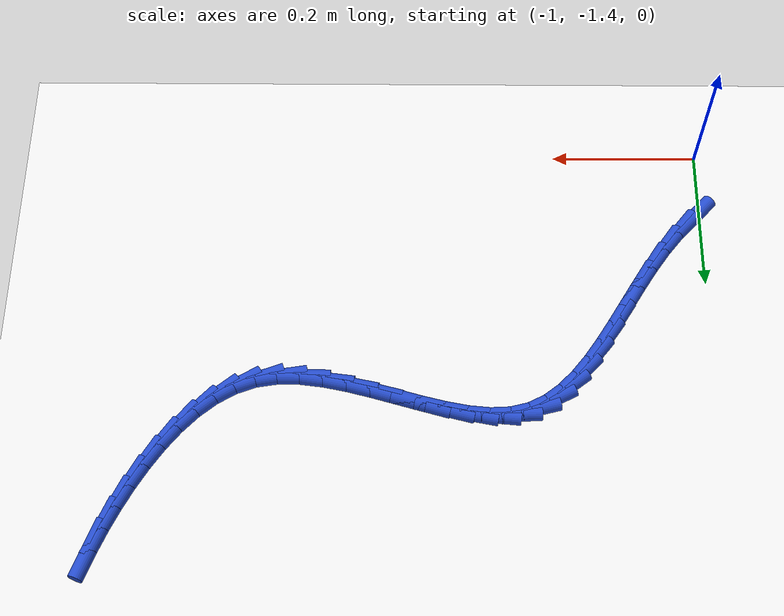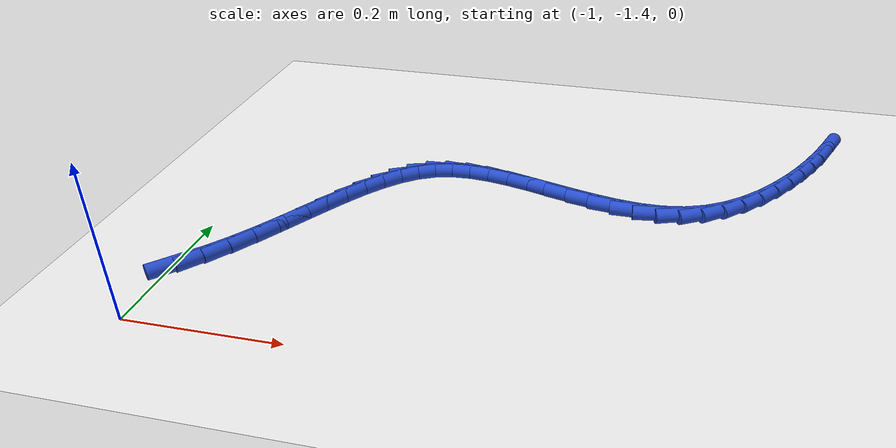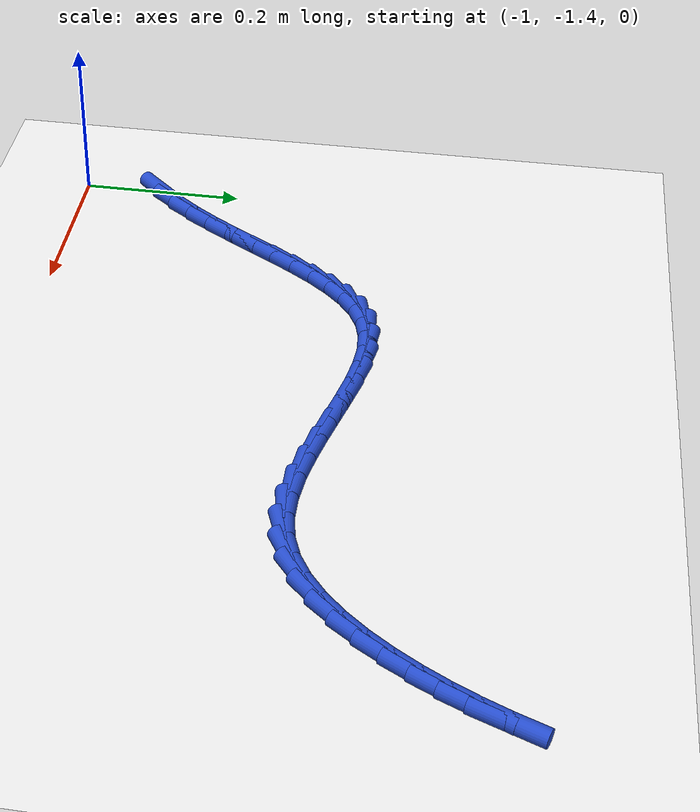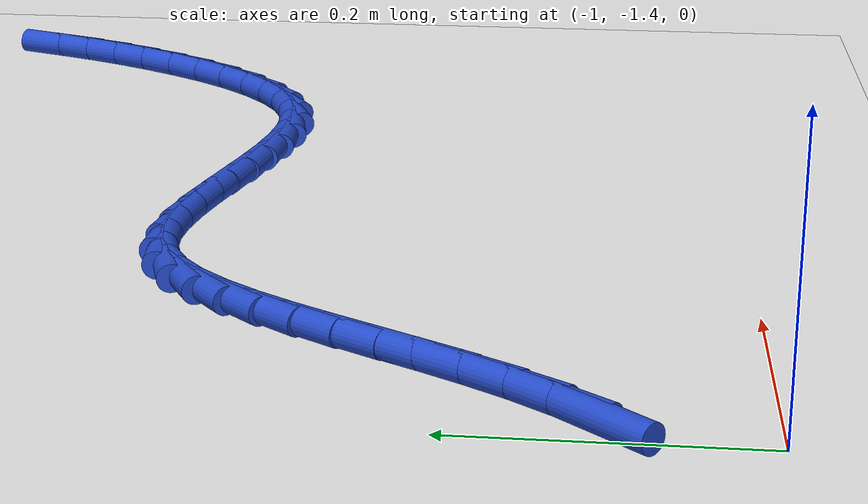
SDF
<sdf version="1.6">
 <world name="default">
  <model name="ground_plane">
   <static>1</static>
   <link name="link">
    <collision name="collision">
     <geometry><plane><normal>0 0 1</normal><size>100 100</size></plane></geometry>
     <surface><friction><ode><mu>100</mu><mu2>50</mu2></ode></friction></surface>
    </collision>
    <visual name="visual">
     <cast_shadows>0</cast_shadows>
     <geometry><plane><normal>0 0 1</normal><size>100 100</size></plane></geometry>
     <material>
      <script><uri>file://media/materials/scripts/gazebo.material</uri><name>Gazebo/WhiteGlow</name></script>
     </material>
    </visual>
   </link>
  </model>
  <model name="line">
   <link name="link_218">
    <pose>-0.987237122349536 -1.2956392126907876 0.01 0 1.57 0.8194733083870842</pose>
    <collision name="collision">
     <geometry><cylinder><radius>0.01</radius><length>0.08</length></cylinder></geometry>
    </collision>
    <visual name="visual">
     <material>
      <script><name>Gazebo/Blue</name><uri>file://media/materials/scripts/gazebo.material</uri></script>
     </material>
     <geometry><cylinder><radius>0.01</radius><length>0.08</length></cylinder></geometry>
    </visual>
   </link>
   <link name="link_219">
    <pose>-0.9650188587242532 -1.2718527234300103 0.01 0 1.57 0.8989388451489183</pose>
    <collision name="collision">
     <geometry><cylinder><radius>0.01</radius><length>0.08</length></cylinder></geometry>
    </collision>
    <visual name="visual">
     <material>
      <script><name>Gazebo/Blue</name><uri>file://media/materials/scripts/gazebo.material</uri></script>
     </material>
     <geometry><cylinder><radius>0.01</radius><length>0.08</length></cylinder></geometry>
    </visual>
   </link>
   <link name="link_220">
    <pose>-0.9443086227221396 -1.245811349257903 0.01 0 1.57 0.9617619103298092</pose>
    <collision name="collision">
     <geometry><cylinder><radius>0.01</radius><length>0.08</length></cylinder></geometry>
    </collision>
    <visual name="visual">
     <material>
      <script><name>Gazebo/Blue</name><uri>file://media/materials/scripts/gazebo.material</uri></script>
     </material>
     <geometry><cylinder><radius>0.01</radius><length>0.08</length></cylinder></geometry>
    </visual>
   </link>
   <link name="link_221">
    <pose>-0.9249736234289951 -1.2180902275147807 0.01 0 1.57 1.003119171809949</pose>
    <collision name="collision">
     <geometry><cylinder><radius>0.01</radius><length>0.08</length></cylinder></geometry>
    </collision>
    <visual name="visual">
     <material>
      <script><name>Gazebo/Blue</name><uri>file://media/materials/scripts/gazebo.material</uri></script>
     </material>
     <geometry><cylinder><radius>0.01</radius><length>0.08</length></cylinder></geometry>
    </visual>
   </link>
   <link name="link_222">
    <pose>-0.9066672326429485 -1.189383157836084 0.01 0 1.57 1.0245423102774316</pose>
    <collision name="collision">
     <geometry><cylinder><radius>0.01</radius><length>0.08</length></cylinder></geometry>
    </collision>
    <visual name="visual">
     <material>
      <script><name>Gazebo/Blue</name><uri>file://media/materials/scripts/gazebo.material</uri></script>
     </material>
     <geometry><cylinder><radius>0.01</radius><length>0.08</length></cylinder></geometry>
    </visual>
   </link>
   <link name="link_223">
    <pose>-0.889038307016898 -1.1603864453954684 0.01 0 1.57 1.0265644855097265</pose>
    <collision name="collision">
     <geometry><cylinder><radius>0.01</radius><length>0.08</length></cylinder></geometry>
    </collision>
    <visual name="visual">
     <material>
      <script><name>Gazebo/Blue</name><uri>file://media/materials/scripts/gazebo.material</uri></script>
     </material>
     <geometry><cylinder><radius>0.01</radius><length>0.08</length></cylinder></geometry>
    </visual>
   </link>
   <link name="link_224">
    <pose>-0.8717357032037415 -1.131796395366588 0.01 0 1.57 1.0083345182238244</pose>
    <collision name="collision">
     <geometry><cylinder><radius>0.01</radius><length>0.08</length></cylinder></geometry>
    </collision>
    <visual name="visual">
     <material>
      <script><name>Gazebo/Blue</name><uri>file://media/materials/scripts/gazebo.material</uri></script>
     </material>
     <geometry><cylinder><radius>0.01</radius><length>0.08</length></cylinder></geometry>
    </visual>
   </link>
   <link name="link_225">
    <pose>-0.8544082778563779 -1.1043093129230983 0.01 0 1.57 0.967372627967895</pose>
    <collision name="collision">
     <geometry><cylinder><radius>0.01</radius><length>0.08</length></cylinder></geometry>
    </collision>
    <visual name="visual">
     <material>
      <script><name>Gazebo/Blue</name><uri>file://media/materials/scripts/gazebo.material</uri></script>
     </material>
     <geometry><cylinder><radius>0.01</radius><length>0.08</length></cylinder></geometry>
    </visual>
   </link>
   <link name="link_226">
    <pose>-0.8367048876277046 -1.0786215032386528 0.01 0 1.57 0.8993051858481084</pose>
    <collision name="collision">
     <geometry><cylinder><radius>0.01</radius><length>0.08</length></cylinder></geometry>
    </collision>
    <visual name="visual">
     <material>
      <script><name>Gazebo/Blue</name><uri>file://media/materials/scripts/gazebo.material</uri></script>
     </material>
     <geometry><cylinder><radius>0.01</radius><length>0.08</length></cylinder></geometry>
    </visual>
   </link>
   <link name="link_227">
    <pose>-0.8182743891706209 -1.0554292714869087 0.01 0 1.57 0.7978401897112065</pose>
    <collision name="collision">
     <geometry><cylinder><radius>0.01</radius><length>0.08</length></cylinder></geometry>
    </collision>
    <visual name="visual">
     <material>
      <script><name>Gazebo/Blue</name><uri>file://media/materials/scripts/gazebo.material</uri></script>
     </material>
     <geometry><cylinder><radius>0.01</radius><length>0.08</length></cylinder></geometry>
    </visual>
   </link>
   <link name="link_228">
    <pose>-0.7987656391380246 -1.0354289228415192 0.01 0 1.57 0.6558724831631613</pose>
    <collision name="collision">
     <geometry><cylinder><radius>0.01</radius><length>0.08</length></cylinder></geometry>
    </collision>
    <visual name="visual">
     <material>
      <script><name>Gazebo/Blue</name><uri>file://media/materials/scripts/gazebo.material</uri></script>
     </material>
     <geometry><cylinder><radius>0.01</radius><length>0.08</length></cylinder></geometry>
    </visual>
   </link>
   <link name="link_229">
    <pose>-0.7778274941828137 -1.0193167624761397 0.01 0 1.57 0.4695573164036385</pose>
    <collision name="collision">
     <geometry><cylinder><radius>0.01</radius><length>0.08</length></cylinder></geometry>
    </collision>
    <visual name="visual">
     <material>
      <script><name>Gazebo/Blue</name><uri>file://media/materials/scripts/gazebo.material</uri></script>
     </material>
     <geometry><cylinder><radius>0.01</radius><length>0.08</length></cylinder></geometry>
    </visual>
   </link>
   <link name="link_230">
    <pose>-0.755108810957887 -1.007789095564425 0.01 0 1.57 0.24888878387289123</pose>
    <collision name="collision">
     <geometry><cylinder><radius>0.01</radius><length>0.08</length></cylinder></geometry>
    </collision>
    <visual name="visual">
     <material>
      <script><name>Gazebo/Blue</name><uri>file://media/materials/scripts/gazebo.material</uri></script>
     </material>
     <geometry><cylinder><radius>0.01</radius><length>0.08</length></cylinder></geometry>
    </visual>
   </link>
   <link name="link_231">
    <pose>-0.7302845542968418 -1.0014797975027614 0.01 0 1.57 0.05050322852930214</pose>
    <collision name="collision">
     <geometry><cylinder><radius>0.01</radius><length>0.08</length></cylinder></geometry>
    </collision>
    <visual name="visual">
     <material>
      <script><name>Gazebo/Blue</name><uri>file://media/materials/scripts/gazebo.material</uri></script>
     </material>
     <geometry><cylinder><radius>0.01</radius><length>0.08</length></cylinder></geometry>
    </visual>
   </link>
   <link name="link_232">
    <pose>-0.7034067052142694 -1.0001212241034407 0.01 0 1.57 -0.09229619529411945</pose>
    <collision name="collision">
     <geometry><cylinder><radius>0.01</radius><length>0.08</length></cylinder></geometry>
    </collision>
    <visual name="visual">
     <material>
      <script><name>Gazebo/Blue</name><uri>file://media/materials/scripts/gazebo.material</uri></script>
     </material>
     <geometry><cylinder><radius>0.01</radius><length>0.08</length></cylinder></geometry>
    </visual>
   </link>
   <link name="link_233">
    <pose>-0.6748106510455443 -1.0027680511179917 0.01 0 1.57 -0.18762393164816443</pose>
    <collision name="collision">
     <geometry><cylinder><radius>0.01</radius><length>0.08</length></cylinder></geometry>
    </collision>
    <visual name="visual">
     <material>
      <script><name>Gazebo/Blue</name><uri>file://media/materials/scripts/gazebo.material</uri></script>
     </material>
     <geometry><cylinder><radius>0.01</radius><length>0.08</length></cylinder></geometry>
    </visual>
   </link>
   <link name="link_234">
    <pose>-0.6448386859667005 -1.0084584386881836 0.01 0 1.57 -0.2456073030708515</pose>
    <collision name="collision">
     <geometry><cylinder><radius>0.01</radius><length>0.08</length></cylinder></geometry>
    </collision>
    <visual name="visual">
     <material>
      <script><name>Gazebo/Blue</name><uri>file://media/materials/scripts/gazebo.material</uri></script>
     </material>
     <geometry><cylinder><radius>0.01</radius><length>0.08</length></cylinder></geometry>
    </visual>
   </link>
   <link name="link_235">
    <pose>-0.613833104153774 -1.0162305469557844 0.01 0 1.57 -0.273501757420997</pose>
    <collision name="collision">
     <geometry><cylinder><radius>0.01</radius><length>0.08</length></cylinder></geometry>
    </collision>
    <visual name="visual">
     <material>
      <script><name>Gazebo/Blue</name><uri>file://media/materials/scripts/gazebo.material</uri></script>
     </material>
     <geometry><cylinder><radius>0.01</radius><length>0.08</length></cylinder></geometry>
    </visual>
   </link>
   <link name="link_236">
    <pose>-0.5821361997827987 -1.0251225360625624 0.01 0 1.57 -0.2752403086405715</pose>
    <collision name="collision">
     <geometry><cylinder><radius>0.01</radius><length>0.08</length></cylinder></geometry>
    </collision>
    <visual name="visual">
     <material>
      <script><name>Gazebo/Blue</name><uri>file://media/materials/scripts/gazebo.material</uri></script>
     </material>
     <geometry><cylinder><radius>0.01</radius><length>0.08</length></cylinder></geometry>
    </visual>
   </link>
   <link name="link_237">
    <pose>-0.550090267029809 -1.0341725661502856 0.01 0 1.57 -0.25181044213861986</pose>
    <collision name="collision">
     <geometry><cylinder><radius>0.01</radius><length>0.08</length></cylinder></geometry>
    </collision>
    <visual name="visual">
     <material>
      <script><name>Gazebo/Blue</name><uri>file://media/materials/scripts/gazebo.material</uri></script>
     </material>
     <geometry><cylinder><radius>0.01</radius><length>0.08</length></cylinder></geometry>
    </visual>
   </link>
   <link name="link_238">
    <pose>-0.5180376000708392 -1.042418797360723 0.01 0 1.57 -0.20155057002372126</pose>
    <collision name="collision">
     <geometry><cylinder><radius>0.01</radius><length>0.08</length></cylinder></geometry>
    </collision>
    <visual name="visual">
     <material>
      <script><name>Gazebo/Blue</name><uri>file://media/materials/scripts/gazebo.material</uri></script>
     </material>
     <geometry><cylinder><radius>0.01</radius><length>0.08</length></cylinder></geometry>
    </visual>
   </link>
   <link name="link_239">
    <pose>-0.4863204930819243 -1.0488993898356427 0.01 0 1.57 -0.12033092250028339</pose>
    <collision name="collision">
     <geometry><cylinder><radius>0.01</radius><length>0.08</length></cylinder></geometry>
    </collision>
    <visual name="visual">
     <material>
      <script><name>Gazebo/Blue</name><uri>file://media/materials/scripts/gazebo.material</uri></script>
     </material>
     <geometry><cylinder><radius>0.01</radius><length>0.08</length></cylinder></geometry>
    </visual>
   </link>
   <link name="link_240">
    <pose>-0.45528124023909844 -1.0526525037168133 0.01 0 1.57 -0.0021251577676427856</pose>
    <collision name="collision">
     <geometry><cylinder><radius>0.01</radius><length>0.08</length></cylinder></geometry>
    </collision>
    <visual name="visual">
     <material>
      <script><name>Gazebo/Blue</name><uri>file://media/materials/scripts/gazebo.material</uri></script>
     </material>
     <geometry><cylinder><radius>0.01</radius><length>0.08</length></cylinder></geometry>
    </visual>
   </link>
   <link name="link_241">
    <pose>-0.42526213571839633 -1.0527162991460028 0.01 0 1.57 0.15873341487054488</pose>
    <collision name="collision">
     <geometry><cylinder><radius>0.01</radius><length>0.08</length></cylinder></geometry>
    </collision>
    <visual name="visual">
     <material>
      <script><name>Gazebo/Blue</name><uri>file://media/materials/scripts/gazebo.material</uri></script>
     </material>
     <geometry><cylinder><radius>0.01</radius><length>0.08</length></cylinder></geometry>
    </visual>
   </link>
   <link name="link_242">
    <pose>-0.39660547369585253 -1.04812893626498 0.01 0 1.57 0.3551884332320354</pose>
    <collision name="collision">
     <geometry><cylinder><radius>0.01</radius><length>0.08</length></cylinder></geometry>
    </collision>
    <visual name="visual">
     <material>
      <script><name>Gazebo/Blue</name><uri>file://media/materials/scripts/gazebo.material</uri></script>
     </material>
     <geometry><cylinder><radius>0.01</radius><length>0.08</length></cylinder></geometry>
    </visual>
   </link>
   <link name="link_243">
    <pose>-0.36961736773825 -1.0381185221732492 0.01 0 1.57 0.5375216274585358</pose>
    <collision name="collision">
     <geometry><cylinder><radius>0.01</radius><length>0.08</length></cylinder></geometry>
    </collision>
    <visual name="visual">
     <material>
      <script><name>Gazebo/Blue</name><uri>file://media/materials/scripts/gazebo.material</uri></script>
     </material>
     <geometry><cylinder><radius>0.01</radius><length>0.08</length></cylinder></geometry>
    </visual>
   </link>
   <link name="link_244">
    <pose>-0.3443822928151177 -1.0230767590047303 0.01 0 1.57 0.6864660454885018</pose>
    <collision name="collision">
     <geometry><cylinder><radius>0.01</radius><length>0.08</length></cylinder></geometry>
    </collision>
    <visual name="visual">
     <material>
      <script><name>Gazebo/Blue</name><uri>file://media/materials/scripts/gazebo.material</uri></script>
     </material>
     <geometry><cylinder><radius>0.01</radius><length>0.08</length></cylinder></geometry>
    </visual>
   </link>
   <link name="link_245">
    <pose>-0.3209008342530226 -1.0038357666418436 0.01 0 1.57 0.8052413640999392</pose>
    <collision name="collision">
     <geometry><cylinder><radius>0.01</radius><length>0.08</length></cylinder></geometry>
    </collision>
    <visual name="visual">
     <material>
      <script><name>Gazebo/Blue</name><uri>file://media/materials/scripts/gazebo.material</uri></script>
     </material>
     <geometry><cylinder><radius>0.01</radius><length>0.08</length></cylinder></geometry>
    </visual>
   </link>
   <link name="link_246">
    <pose>-0.29917341942275494 -0.9812284942294314 0.01 0 1.57 0.8994489138861193</pose>
    <collision name="collision">
     <geometry><cylinder><radius>0.01</radius><length>0.08</length></cylinder></geometry>
    </collision>
    <visual name="visual">
     <material>
      <script><name>Gazebo/Blue</name><uri>file://media/materials/scripts/gazebo.material</uri></script>
     </material>
     <geometry><cylinder><radius>0.01</radius><length>0.08</length></cylinder></geometry>
    </visual>
   </link>
   <link name="link_247">
    <pose>-0.2792004756951044 -0.9560878909123343 0.01 0 1.57 0.9744818973874495</pose>
    <collision name="collision">
     <geometry><cylinder><radius>0.01</radius><length>0.08</length></cylinder></geometry>
    </collision>
    <visual name="visual">
     <material>
      <script><name>Gazebo/Blue</name><uri>file://media/materials/scripts/gazebo.material</uri></script>
     </material>
     <geometry><cylinder><radius>0.01</radius><length>0.08</length></cylinder></geometry>
    </visual>
   </link>
   <link name="link_248">
    <pose>-0.26098243044086106 -0.9292469058353938 0.01 0 1.57 1.03473217577462</pose>
    <collision name="collision">
     <geometry><cylinder><radius>0.01</radius><length>0.08</length></cylinder></geometry>
    </collision>
    <visual name="visual">
     <material>
      <script><name>Gazebo/Blue</name><uri>file://media/materials/scripts/gazebo.material</uri></script>
     </material>
     <geometry><cylinder><radius>0.01</radius><length>0.08</length></cylinder></geometry>
    </visual>
   </link>
   <link name="link_249">
    <pose>-0.24451898817861054 -0.9015349710413493 0.01 0 1.57 1.0859638554517606</pose>
    <collision name="collision">
     <geometry><cylinder><radius>0.01</radius><length>0.08</length></cylinder></geometry>
    </collision>
    <visual name="visual">
     <material>
      <script><name>Gazebo/Blue</name><uri>file://media/materials/scripts/gazebo.material</uri></script>
     </material>
     <geometry><cylinder><radius>0.01</radius><length>0.08</length></cylinder></geometry>
    </visual>
   </link>
   <link name="link_250">
    <pose>-0.2297526017297863 -0.873502955315749 0.01 0 1.57 1.1333359529045817</pose>
    <collision name="collision">
     <geometry><cylinder><radius>0.01</radius><length>0.08</length></cylinder></geometry>
    </collision>
    <visual name="visual">
     <material>
      <script><name>Gazebo/Blue</name><uri>file://media/materials/scripts/gazebo.material</uri></script>
     </material>
     <geometry><cylinder><radius>0.01</radius><length>0.08</length></cylinder></geometry>
    </visual>
   </link>
   <link name="link_251">
    <pose>-0.21652792163791415 -0.8452258617065387 0.01 0 1.57 1.1767379099032607</pose>
    <collision name="collision">
     <geometry><cylinder><radius>0.01</radius><length>0.08</length></cylinder></geometry>
    </collision>
    <visual name="visual">
     <material>
      <script><name>Gazebo/Blue</name><uri>file://media/materials/scripts/gazebo.material</uri></script>
     </material>
     <geometry><cylinder><radius>0.01</radius><length>0.08</length></cylinder></geometry>
    </visual>
   </link>
   <link name="link_252">
    <pose>-0.204680029110894 -0.8167321328026089 0.01 0 1.57 1.21568940725941</pose>
    <collision name="collision">
     <geometry><cylinder><radius>0.01</radius><length>0.08</length></cylinder></geometry>
    </collision>
    <visual name="visual">
     <material>
      <script><name>Gazebo/Blue</name><uri>file://media/materials/scripts/gazebo.material</uri></script>
     </material>
     <geometry><cylinder><radius>0.01</radius><length>0.08</length></cylinder></geometry>
    </visual>
   </link>
  </model>
 </world>
</sdf>
